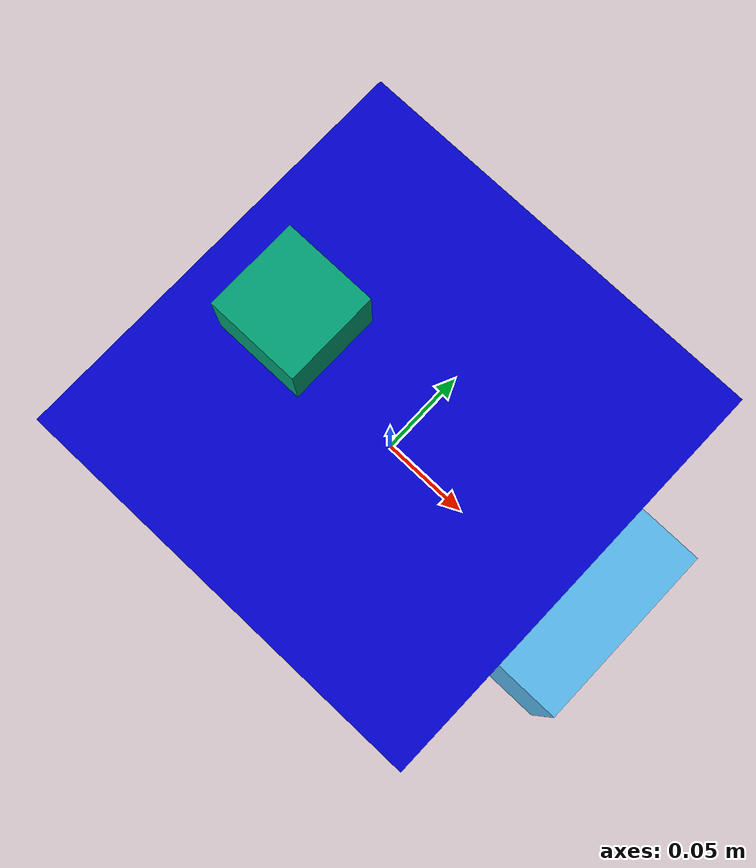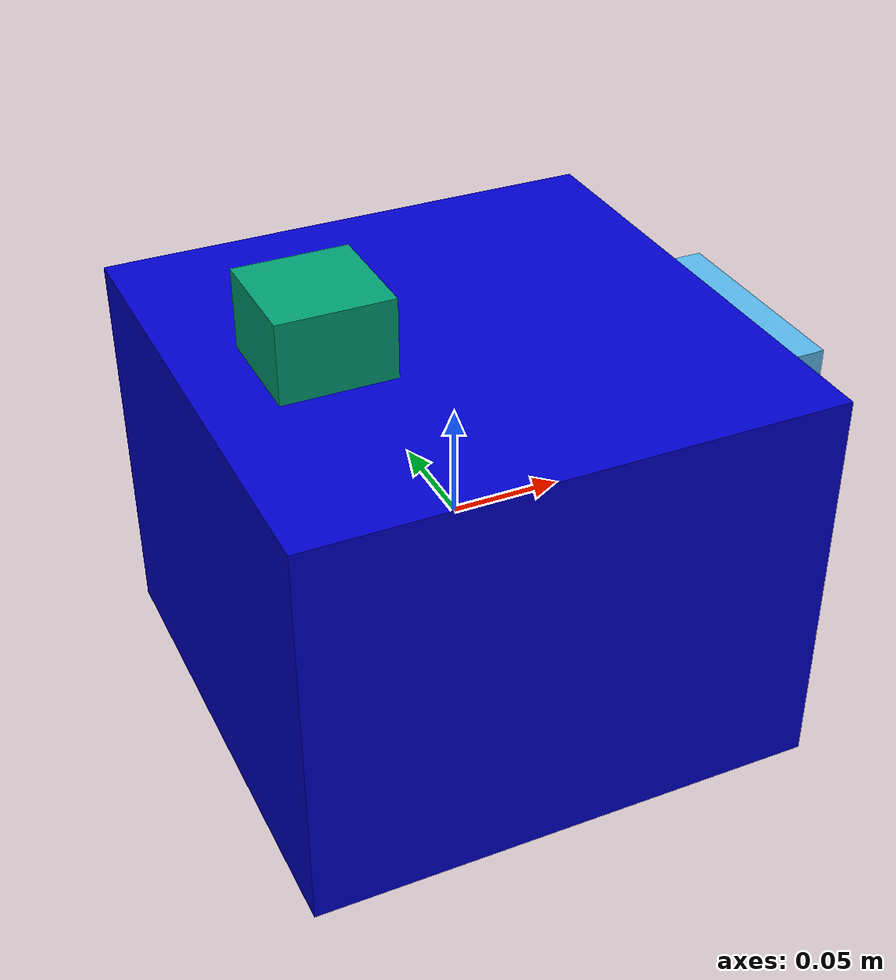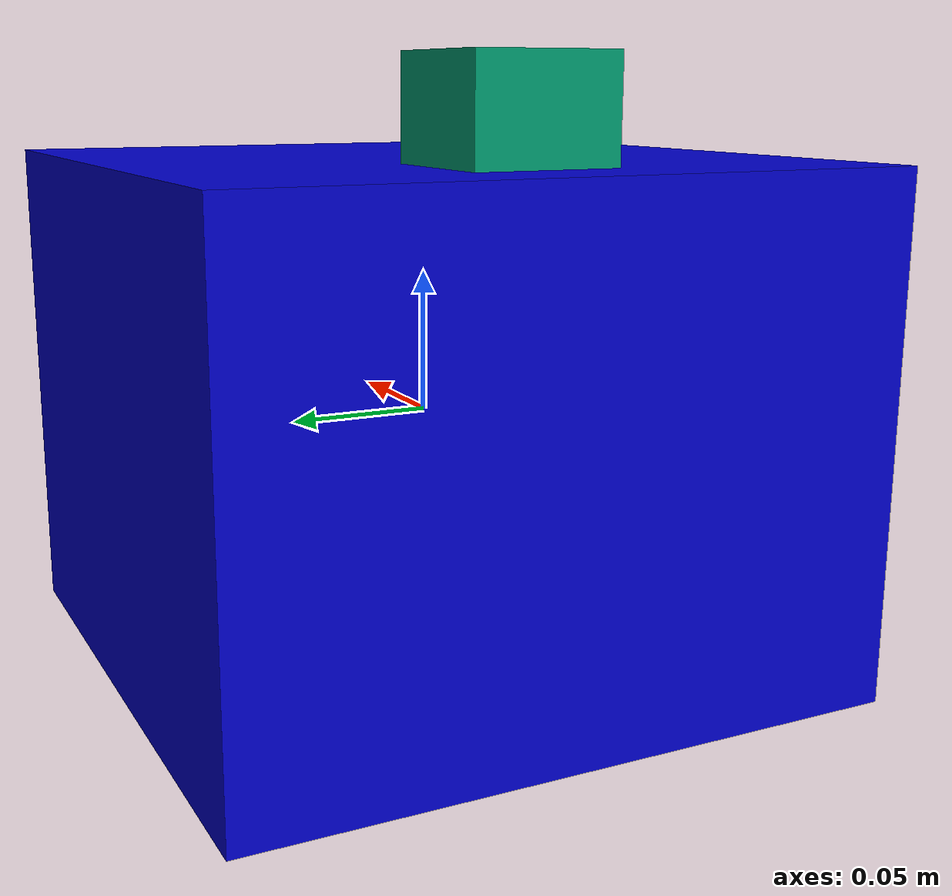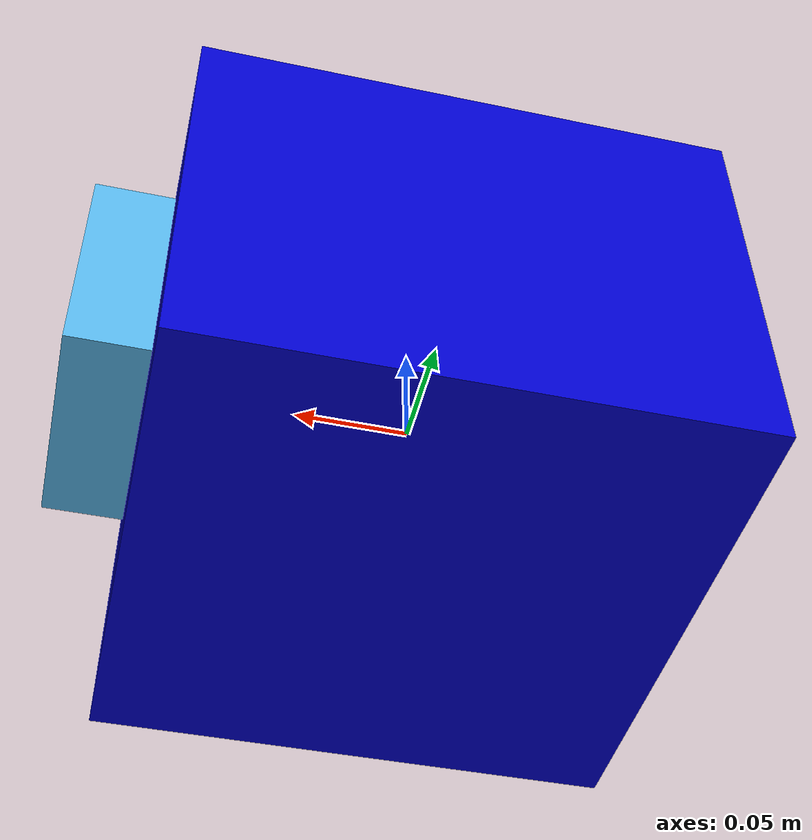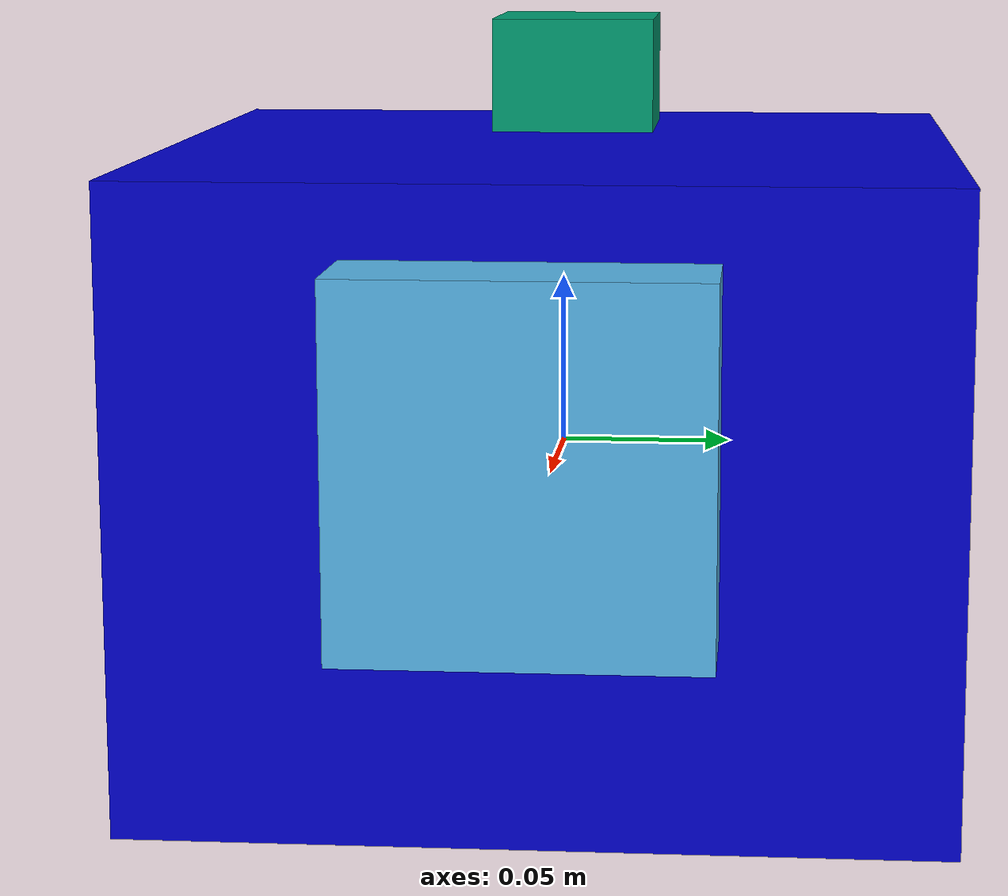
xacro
<?xml version="1.0"?>

<robot name="smart_car_v0" xmlns:xacro="http://www.ros.org/wiki/xacro">
    <!-- define name -->
    <xacro:arg name="car_namespace"   default="" />
    <xacro:arg name="car_name"   default="" />

    <!-- load model -->
    <xacro:include filename="$(find sim_gazebo)/urdf/sub_base.urdf.xacro" />
    <xacro:sub_base/>
    <xacro:include filename="$(find sim_gazebo)/urdf/sub_cam.urdf.xacro" />
    <xacro:sub_cam/>
    <xacro:include filename="$(find sim_gazebo)/urdf/sub_lidar.urdf.xacro" />
    <xacro:sub_lidar/>

    <!-- install model -->
    <xacro:property name="cam_x" value="0.1" />
    <xacro:property name="cam_y" value="0" />
    <xacro:property name="cam_z" value="0.02" />
    <xacro:property name="lidar_x" value="-0.06" />
    <xacro:property name="lidar_y" value="0" />
    <xacro:property name="lidar_z" value="0.1" />

    <link name="base_footprint"/>
    <joint name="base_joint" type="fixed">
        <parent link="base_link"/>
        <child link="base_footprint" />
    </joint>
    <joint name="joint_base_cam" type="fixed">
        <origin xyz="${cam_x} ${cam_y} ${cam_z}" rpy="0 0 0" />
        <parent link="base_link"/>
        <child link="cam_link" />
    </joint>
    <joint name="joint_base_lidar" type="fixed">
        <origin xyz="${lidar_x} ${lidar_y} ${lidar_z}" rpy="0 0 0" />
        <parent link="base_link"/>
        <child link="lidar_link"/>
    </joint>

    <!-- load func -->
    <xacro:include filename="$(find sim_gazebo)/urdf/drive_base.gazebo" />
    <xacro:drive_base/>
    <xacro:include filename="$(find sim_gazebo)/urdf/drive_cam.gazebo" />
    <xacro:drive_cam/>
    <xacro:include filename="$(find sim_gazebo)/urdf/drive_lidar.gazebo" />
    <xacro:drive_lidar/>
</robot>

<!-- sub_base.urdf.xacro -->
<robot name="sub_base" xmlns:xacro="http://www.ros.org/wiki/xacro">
    <xacro:macro name="sub_base">
        <link name="base_link">
            <inertial>
                <mass value="10"/>
                <inertia ixx="1" ixy="0" ixz="0" iyy="1" iyz="0" izz="0.25"/>
                <origin rpy="0 0 0 " xyz="0 0 0"/>
            </inertial>
            <collision>
                <origin rpy="0 0 0" xyz="0 0 0"/>
                <geometry>
                    <box size="0.23 0.23 0.18"/>
                </geometry>
            </collision>
            <visual>
                <origin rpy="0 0 0" xyz="0 0 0"/>
                <geometry>
                    <box size="0.23 0.23 0.18"/>
                </geometry>
                <material name="blue">
                    <color rgba="0.0 0.0 0.8 1" />
                </material>
            </visual>
        </link>
    </xacro:macro>
</robot>

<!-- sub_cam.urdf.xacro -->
<robot name="sub_cam" xmlns:xacro="http://www.ros.org/wiki/xacro">
    <xacro:macro name="sub_cam">
        <link name="cam_link">
            <inertial>
                <mass value="0.1"/>
                <inertia ixx="0.000166667" ixy="0" ixz="0" iyy="0.000166667" iyz="0" izz="0.000166667"/>
                <origin rpy="0 0 0 " xyz="0 0 0"/>
            </inertial>
            <collision>
                <origin rpy="0 0 0 " xyz="0 0 0"/>
                <geometry>
                    <box size="0.1 0.1 0.1"/>
                </geometry>
            </collision>
            <visual>
                <origin rpy="0 0 0 " xyz="0 0 0"/>
                <geometry>
                    <box size="0.1 0.1 0.1"/>
                </geometry>
            </visual>
        </link>
    </xacro:macro>
</robot>

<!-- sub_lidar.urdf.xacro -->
<robot name="sub_lidar" xmlns:xacro="http://www.ros.org/wiki/xacro">
    <xacro:macro name="sub_lidar">
        <link name="lidar_link">
            <inertial>
                <mass value="0.1"/>
                <inertia ixx="1" ixy="0" ixz="0" iyy="1" iyz="0" izz="1"/>
                <origin rpy="0 0 0 " xyz="0 0 0"/>
            </inertial>
            <collision>
                <origin rpy="0 0 0 " xyz="0 0 0"/>
                <geometry>
                    <box size="0.05 0.05 0.05"/>
                </geometry>
            </collision>
            <visual>
                <origin rpy="0 0 0 " xyz="0 0 0"/>
                <geometry>
                    <box size="0.05 0.05 0.05"/>
                </geometry>
            </visual>
        </link>
    </xacro:macro>
</robot>
